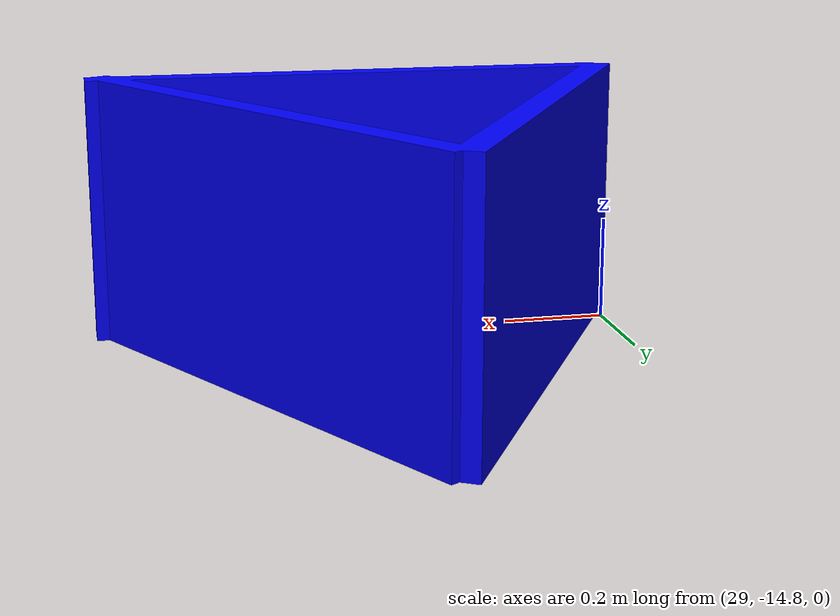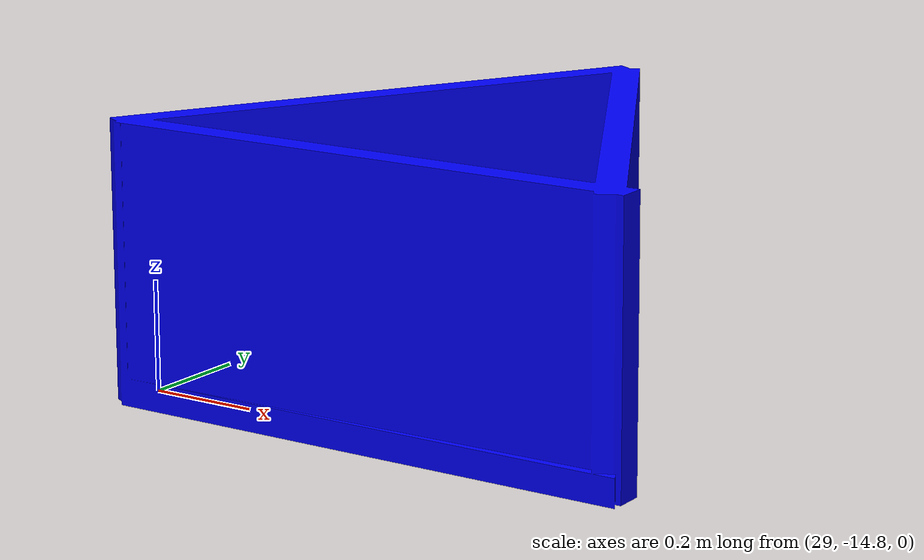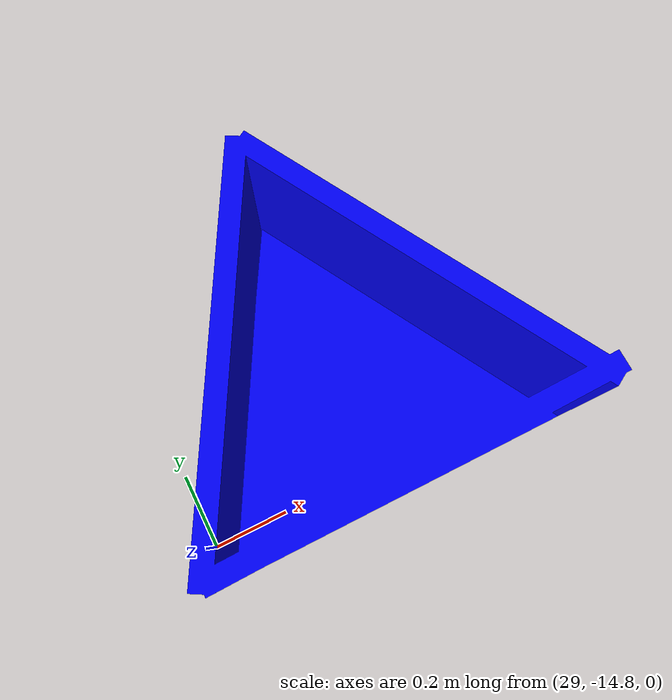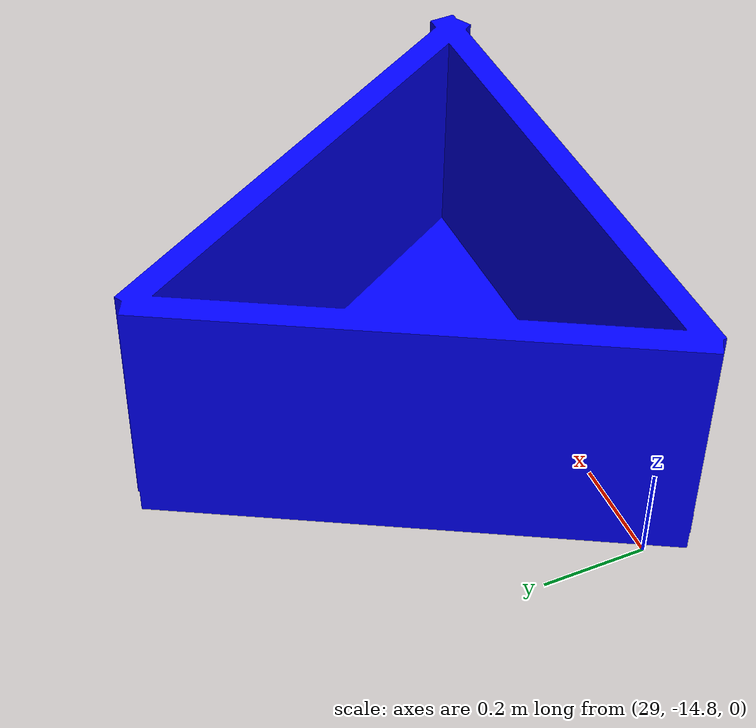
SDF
<?xml version="1.0"?>
<sdf version="1.6">
  <model name="blue_triangle">
    <static>true</static>

    <link name="link">

      <!-- MESH -->
      <visual name="visual">
        <geometry>
          <mesh>
            <uri>model://blue_triangle/meshes/triangle.stl</uri>
            <scale>1 1 1</scale>
          </mesh>
        </geometry>

        <!-- MATERIAL -->
        <material>
          <!-- Blue on Ambient Lightning -->
          <ambient>0 0 1 1</ambient>
          <!-- Perfect Blue on Camera -->
          <diffuse>0 0 1 1</diffuse>
          <!-- Prevents Reflections -->
          <specular>0 0 0 1</specular>
        </material>
      </visual>

      <!-- COLLISION -->
      <collision name="collision">
        <geometry>
          <cylinder>
            <radius>0.15</radius>
            <length>0.02</length>
          </cylinder>
        </geometry>
      </collision>

    </link>
  </model>
</sdf>
